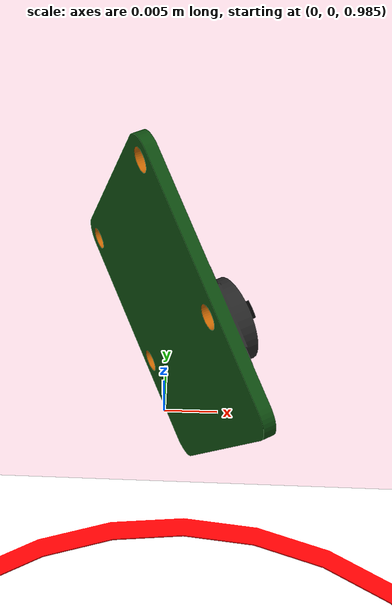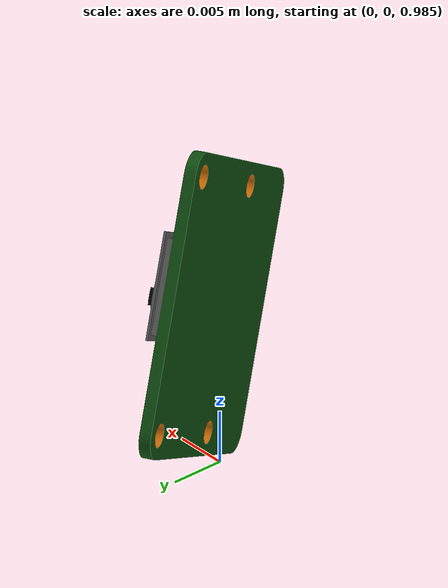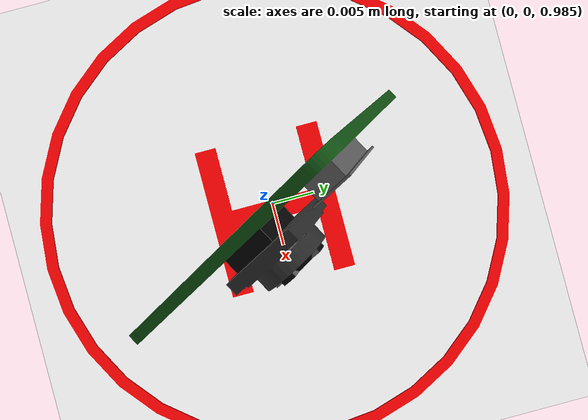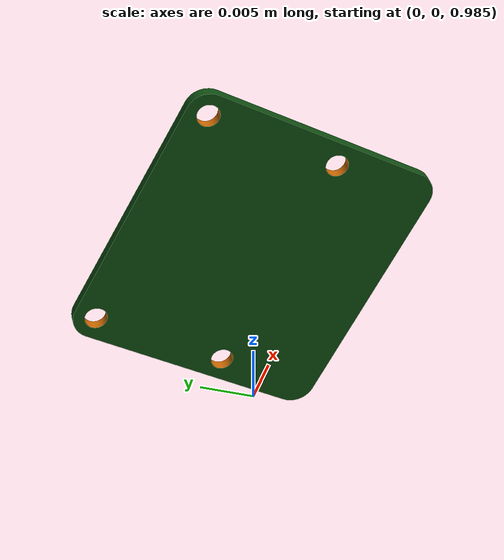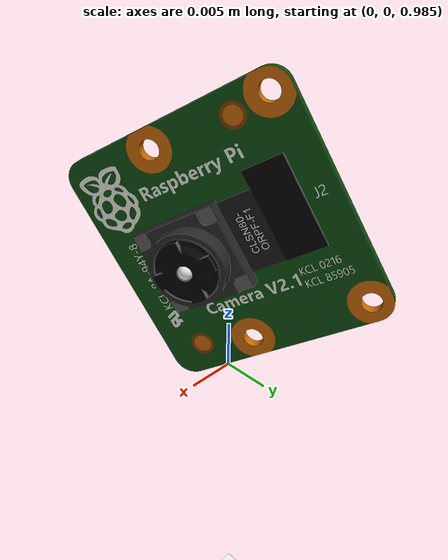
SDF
<?xml version="1.0" ?>
<sdf version="1.5">
  <world name="default">
    <!-- Global light source -->
    <light type="directional" name="sun1">
      <pose>50 0 150 0 0 0</pose>
      <diffuse>1 1 1 1</diffuse>
      <specular>.1 .1 .1 1</specular>
      <direction>0.3 0.3 -1</direction>
      <cast_shadows>false</cast_shadows>
    </light>

    <!-- Global light source -->
    <light type="directional" name="sun_diffuse">
      <pose>-50 0 -150 0 0 0</pose>
      <diffuse>0.6 0.6 0.6 1</diffuse>
      <specular>0 0 0 1</specular>
      <direction>-0.3 -0.3 -1</direction>
      <cast_shadows>false</cast_shadows>
    </light>

    <!-- A ground plane -->
    <include>
      <uri>model://ground_plane</uri>
    </include>

    <physics name='default_physics' default='0' type='ode'>
      <gravity>0 0 -9.8066</gravity>
      <ode>
        <solver>
          <type>quick</type>
          <iters>10</iters>
          <sor>1.3</sor>
          <use_dynamic_moi_rescaling>0</use_dynamic_moi_rescaling>
        </solver>
        <constraints>
          <cfm>0</cfm>
          <erp>0.2</erp>
          <contact_max_correcting_vel>100</contact_max_correcting_vel>
          <contact_surface_layer>0.001</contact_surface_layer>
        </constraints>
      </ode>
      <max_step_size>0.004</max_step_size>
      <real_time_factor>1</real_time_factor>
      <real_time_update_rate>250</real_time_update_rate>
      <magnetic_field>6.0e-6 2.3e-5 -4.2e-5</magnetic_field>
    </physics>
    <include>
      <uri>model://pi_cam</uri>
      <pose>0 0 1 0.5 0 0.5</pose>
      <static>1</static>
    </include>

    <include>
      <uri>model://landing_pad</uri>
      <pose>0 0 0 0 0 0</pose>
    </include>
  </world>
</sdf>

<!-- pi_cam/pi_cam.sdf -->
<sdf version="1.6">
  <model name="pi_cam">
    <link name="link">
      <pose>0 0 0 0 0 0</pose>
      <inertial>
        <pose>0 0 0 0 0 0</pose>
        <mass>0.003</mass>
        <inertia>
          <ixx>1e-05</ixx>
          <ixy>0</ixy>
          <ixz>0</ixz>
          <iyy>1e-05</iyy>
          <iyz>0</iyz>
          <izz>1e-05</izz>
        </inertia>
      </inertial>
      <visual name="pi_cam_visual">
        <pose>0 0 0 -1.5708 0 -1.5708</pose>
        <geometry>
          <mesh>
            <scale>1 1 1</scale>
            <uri>model://pi_cam/meshes/pi_cam.dae</uri>
          </mesh>
        </geometry>
      </visual>
      <collision name="pi_cam_collison">
        <pose>0 0 0 0 0 0</pose>
        <geometry>
          <box>
            <size>0.025 0.025 0.007</size>
          </box>
        </geometry>
      </collision>
      <sensor name='camera' type='camera'>
          <camera name='__default__'>
            <horizontal_fov>1.085595</horizontal_fov>
            <image>
              <width>320</width>
              <height>240</height>
            </image>
            <clip>
              <near>0.1</near>
              <far>100</far>
            </clip>
            <lens>
              <type>custom</type>
              <custom_function>
                <c1>1.05</c1>
                <c2>4</c2>
                <f>1</f>
                <fun>tan</fun>
              </custom_function>
              <scale_to_hfov>1</scale_to_hfov>
              <cutoff_angle>3.1415</cutoff_angle>
              <env_texture_size>1080</env_texture_size>
            </lens>
          </camera>
          <always_on>1</always_on>
          <update_rate>30</update_rate>
          <visualize>1</visualize>

          <!-- GStreamer camera plugin (needs a lot of CPU! Consider lowering the
             camera image size) -->
          <plugin name="GstCameraPlugin" filename="libgazebo_gst_camera_plugin.so">
            <robotNamespace></robotNamespace>
            <udpPort>5600</udpPort>
          </plugin>

        </sensor>
    </link>
  </model>
</sdf>

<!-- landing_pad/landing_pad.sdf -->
<sdf version='1.6'>
  <model name='landing_pad'>
    <link name='link'>
      <inertial>
        <mass>1</mass>
        <inertia>
          <ixx>0.166667</ixx>
          <ixy>0</ixy>
          <ixz>0</ixz>
          <iyy>0.166667</iyy>
          <iyz>0</iyz>
          <izz>0.166667</izz>
        </inertia>
        <pose frame=''>0 0 0 0 -0 0</pose>
      </inertial>
      <pose frame=''>0 0 0 0 -0 0</pose>
      <gravity>0</gravity>
      <self_collide>0</self_collide>
      <kinematic>0</kinematic>
      <enable_wind>0</enable_wind>
      <collision name='base_link_inertia_collision'>
        <pose>0 0 0.015 0 0 0</pose>
        <geometry>
          <box>
            <size>1 1 0.03</size>
          </box>
        </geometry>
        <surface>
          <contact>
            <ode>
              <min_depth>0.001</min_depth>
              <max_vel>0</max_vel>
            </ode>
          </contact>
          <friction>
            <ode>
              <mu>1</mu>
              <mu2>1</mu2>
            </ode>
          </friction>
        </surface>
      </collision>
      <visual name='visual'>
        <pose>0 0 0 0 0 1.57</pose>
        <geometry>
          <mesh>
            <scale>1 1 1</scale>
            <uri>model://landing_pad/meshes/landing_pad.dae</uri>
          </mesh>
        </geometry>
      </visual>
    </link>
    <static>0</static>
    <allow_auto_disable>1</allow_auto_disable>
  </model>
</sdf>
